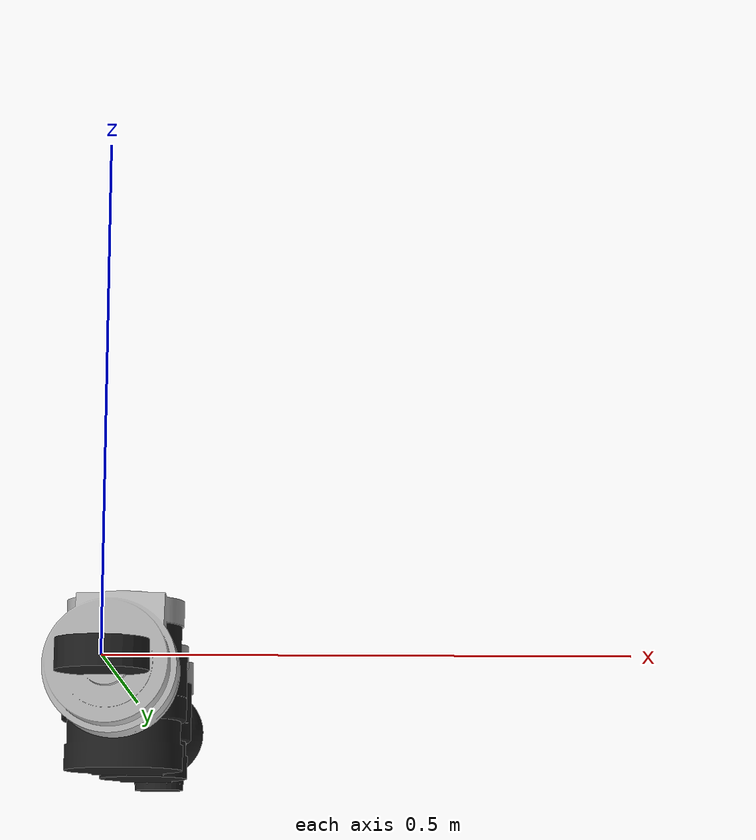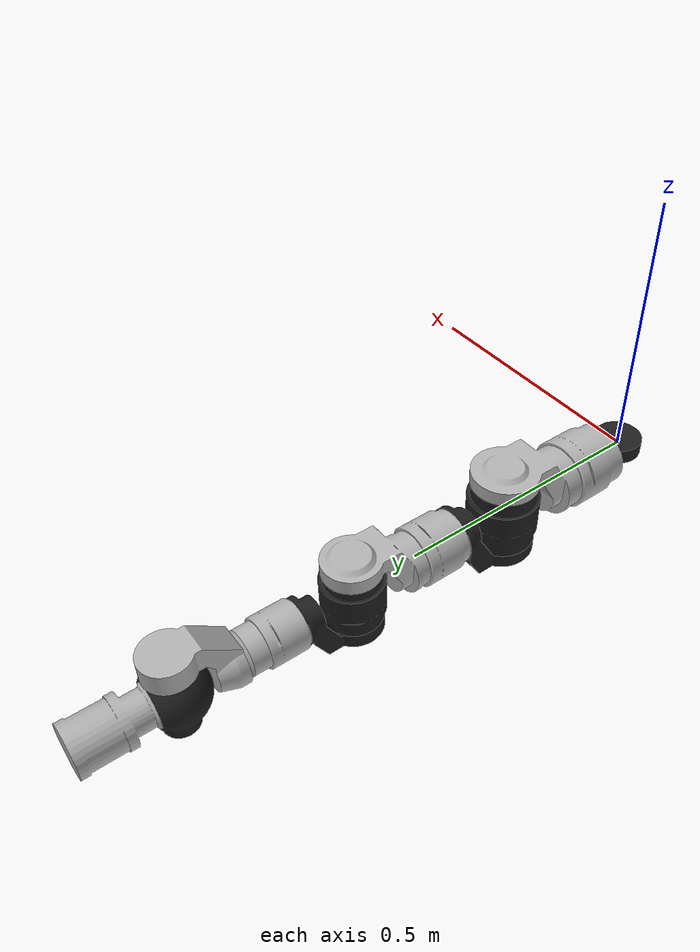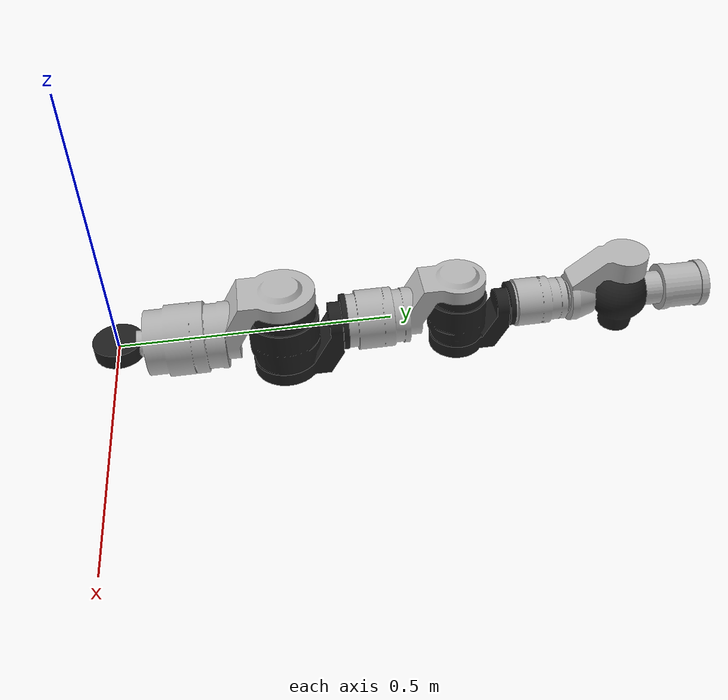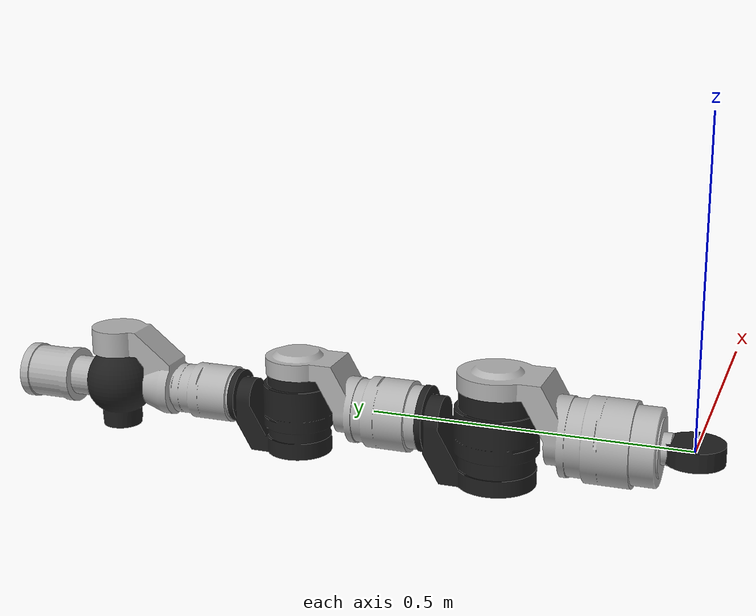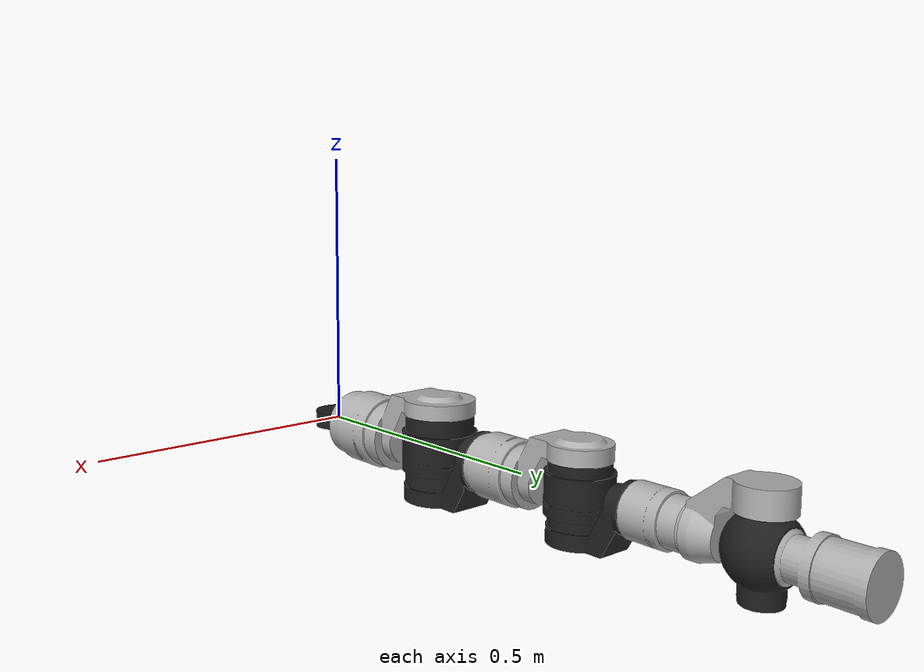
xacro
<?xml version="1.0"?>
<robot name="lwa4d" xmlns:xacro="http://www.ros.org/wiki/xacro">

    <!-- Include decriptions for SDH -->
    <xacro:include filename="$(find apc_description)/urdf/lwa4d/lwa4d.xacro" />

    <!-- Math constants -->
    <xacro:property name="M_PI" value="3.141592653" />

    <!-- LWA4D origin. -->
    <link name="lwa4d_origin" />

    <!-- Assemble LWA4D -->
    <xacro:schunk_lwa4d parent="lwa4d_origin" name="lwa4d_arm" >
        <origin xyz="0 0 0" rpy="0 0 0" />
    </xacro:schunk_lwa4d>

</robot>

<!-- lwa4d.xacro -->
<robot name="lwa4d" xmlns:xacro="http://www.ros.org/wiki/xacro">

	<!-- Differences with lwa4d-->
	<!-- Flip axis 2,4,6,7-->
	<!-- Change initial distance to joint 0 from 0.1375 to 0.12 to have -->
	<!-- pedestal distance of 0.12 + 0.18 = 0.300 -->

	<!-- To simulate with left guy, rotate w.r.t. world 180 w.r.t. Z axis -->

	<!-- F/T changes -->
	<!-- December 16th, 2014 -->
	<!-- Changed distance from J6 to Jt from 0.075 to 0.1672 (including the F/T + tool changer) -->
	<!-- Distances from Schunk datasheet -->

	<!-- xacro changes -->
	<!-- December 17th, 2014 -->
    <!-- Changed lwa4d_right_phys.urdf into a xacro macro -->

    <xacro:include filename="$(find schunk_description)/urdf/lwa4d/lwa4d.gazebo.xacro"/>
    <xacro:include filename="$(find schunk_description)/urdf/lwa4d/lwa4d.transmission.xacro"/>

	<xacro:macro name="schunk_lwa4d" params="parent name *origin">

	    <link name="${name}_0_link">
		    <inertial>
				<origin xyz="0 0 0" rpy="0 0 0"/>
				<mass value="1.0"/>
				<inertia ixx="0.01" ixy="0" ixz="0" iyy="0.01" iyz="0" izz="0.01" />
			</inertial>
            <visual>
                <origin xyz="0 0 0" rpy="0 0 0"/>
                <geometry>
                    <cylinder radius="0.045" length="0.03"/>
                </geometry>
                <material name="Schunk/Black"/>
            </visual>
            <collision>
                <origin xyz="0 0 0" rpy="0 0 0"/>
                <geometry>
                    <cylinder radius="0.045" length="0.03"/>
                </geometry>
            </collision>
		</link>

		<link name="${name}_1_link">
			<inertial>
				<origin xyz="0 0 0" rpy="0 0 0" />
				<!--mass value="5.9907"/-->
				<mass value="2.0"/>
				<inertia ixx="0.01" ixy="0" ixz="0" iyy="0.01" iyz="0" izz="0.01" />
			</inertial>

			<visual>
				<origin xyz="0 0 0" rpy="0 0 0" />
				<geometry>
					<mesh filename="package://apc_description/meshes/lwa4d/arm_1_link.dae" />
				</geometry>
				<material name="Schunk_LightGrey">
					<color rgba="0.7 0.7 0.7 1.0"/>
				</material>
			</visual>

			<collision>
				<origin xyz="0 0 0" rpy="0 0 0" />
				<geometry>
					<mesh filename="package://apc_description/meshes/lwa4d/arm_1_link.dae" />
				</geometry>
			</collision>
		</link>

		<link name="${name}_2_link">
			<inertial>
				<origin xyz="0 0 0" rpy="0 0 0"/>
				<mass value="2.0"/>
				<inertia ixx="0.03" ixy="0" ixz="0" iyy="0.03" iyz="0" izz="0.03" />
			</inertial>

			<visual>
				<origin xyz="0 0 0" rpy="0 0 0" />
				<geometry>
					<mesh filename="package://apc_description/meshes/lwa4d/arm_2_link.dae" />
				</geometry>
				<material name="Schunk_Black" />
			</visual>

			<collision>
				<origin xyz="0 0 0" rpy="0 0 0" />
				<geometry>
					<mesh filename="package://apc_description/meshes/lwa4d/arm_2_link.dae"/>
				</geometry>
			</collision>
		</link>

		<link name="${name}_3_link">
			<inertial>
				<origin xyz="0 0 0" rpy="0 0 0"/>
				<mass value="2.0"/>
				<inertia ixx="0.03" ixy="0" ixz="0" iyy="0.03" iyz="0" izz="0.03" />
			</inertial>

			<visual>
				<origin xyz="0 0 0" rpy="0 0 0" />
				<geometry>
					<mesh filename="package://apc_description/meshes/lwa4d/arm_3_link.dae" />
				</geometry>
				<material name="Schunk_LightGrey" />
			</visual>

			<collision>
				<origin xyz="0 0 0" rpy="0 0 0" />
				<geometry>
					<mesh filename="package://apc_description/meshes/lwa4d/arm_3_link.dae"/>
				</geometry>
			</collision>
		</link>

		<link name="${name}_4_link">
			<inertial>
				<origin xyz="0 0 0" rpy="0 0 0"/>
				<mass value="2.0"/>
				<inertia ixx="0.03" ixy="0" ixz="0" iyy="0.03" iyz="0" izz="0.03" />
			</inertial>

			<visual>
				<origin xyz="0 0 0" rpy="0 0 0" />
				<geometry>
					<mesh filename="package://apc_description/meshes/lwa4d/arm_4_link.dae" />
				</geometry>
				<material name="Schunk_Black" />
			</visual>

			<collision>
				<origin xyz="0 0 0" rpy="0 0 0" />
				<geometry>
					<mesh filename="package://apc_description/meshes/lwa4d/arm_4_link.dae"/>
				</geometry>
			</collision>
		</link>

		<link name="${name}_5_link">
			<inertial>
				<origin xyz="0 0 0" rpy="0 0 0"/>
				<mass value="2.313272"/>
				<inertia ixx="0.03" ixy="0" ixz="0" iyy="0.03" iyz="0" izz="0.03" />
			</inertial>

			<visual>
				<origin xyz="0 0 0" rpy="0 0 0" />
				<geometry>
					<mesh filename="package://apc_description/meshes/lwa4d/arm_5_link_phys.dae" />
				</geometry>
				<material name="Schunk_LightGrey" />
			</visual>

			<collision>
				<origin xyz="0 0 0" rpy="0 0 0" />
				<geometry>
					<mesh filename="package://apc_description/meshes/lwa4d/arm_5_link_phys.dae"/>
				</geometry>
			</collision>
		</link>

		<link name="${name}_6_link">
			<inertial>
				<origin xyz="0 0 0" rpy="0 0 0"/>
				<mass value="2.057856"/>
				<inertia ixx="0.01" ixy="0" ixz="0" iyy="0.01" iyz="0" izz="0.01" />
			</inertial>

			<visual>
				<origin xyz="0 0 0" rpy="0 0 0" />
				<geometry>
					<mesh filename="package://apc_description/meshes/lwa4d/arm_6_link.dae" />
				</geometry>
				<material name="Schunk_Black" />
			</visual>

			<collision>
				<origin xyz="0 0 0" rpy="0 0 0" />
				<geometry>
					<mesh filename="package://apc_description/meshes/lwa4d/arm_6_link.dae"/>
				</geometry>
			</collision>
		</link>

		<link name="${name}_7_link">
			<inertial>
				<origin xyz="0 0 0" rpy="0 0 0"/>
				<mass value="1.120198"/>
				<inertia ixx="0.01" ixy="0" ixz="0" iyy="0.01" iyz="0" izz="0.01" />
			</inertial>

			<visual>
				<origin xyz="0 0 0" rpy="0 0 0" />
				<geometry>
					<mesh filename="package://apc_description/meshes/lwa4d/arm_7_FT_tool_changers_link.dae" />
				</geometry>
				<material name="Schunk_LightGrey" />
			</visual>

			<collision>
				<origin xyz="0 0 0" rpy="0 0 0" />
				<geometry>
					<mesh filename="package://apc_description/meshes/lwa4d/arm_7_FT_tool_changers_link.dae"/>
				</geometry>
			</collision>
		</link>

	    <joint name="${name}_0_joint" type="fixed" >
            <xacro:insert_block name="origin"/>
		    <parent link="${parent}" />
		    <child link="${name}_0_link" />
	    </joint>

		<joint name="${name}_1_joint" type="revolute">
			<origin xyz="0 0.12 0" rpy="1.57 3.1416 0"/>
			<parent link="${name}_0_link"/>
			<child link="${name}_1_link"/>
			<axis xyz="0 0 1"/>
			<dynamics damping="10" />
			<limit effort="370" velocity="2.0" lower="-3.14" upper="3.14"/>
		</joint>

		<joint name="${name}_2_joint" type="revolute">
			<origin xyz="0 0 -0.18" rpy="-1.57 0 0"/>
			<parent link="${name}_1_link"/>
			<child link="${name}_2_link"/>
			<axis xyz="0 0 -1"/>
			<dynamics damping="10" />
			<limit effort="370" velocity="2.0" lower="-1.97" upper="1.97"/>
		</joint>

		<joint name="${name}_3_joint" type="revolute">
			<origin xyz="0 0 0" rpy="1.57 0 0"/>
			<parent link="${name}_2_link"/>
			<child link="${name}_3_link"/>
			<axis xyz="0 0 1"/>
			<dynamics damping="5" />
			<limit effort="176" velocity="2.0" lower="-3.14" upper="3.14"/>
		</joint>

		<joint name="${name}_4_joint" type="revolute">
			<origin xyz="0 0 -0.328" rpy="-1.57 0 0"/>
			<parent link="${name}_3_link"/>
			<child link="${name}_4_link"/>
			<axis xyz="0 0 -1" />
			<dynamics damping="5" />
			<limit effort="176" velocity="2.0" lower="-2.08208" upper="2.08208"/>
		</joint>

		<joint name="${name}_5_joint" type="revolute">
			<origin xyz="0 0 0" rpy="1.57 0 0" />
			<parent link="${name}_4_link"/>
			<child link="${name}_5_link"/>
			<axis xyz="0 0 1" />
			<dynamics damping="5" />
			<limit effort="41.6" velocity="2.0" lower="-3.14" upper="3.14" />
		</joint>

		<joint name="${name}_6_joint" type="revolute">
			<origin xyz="0 0 -0.323" rpy="1.57 0 0" />
			<parent link="${name}_5_link"/>
			<child link="${name}_6_link"/>
			<axis xyz="0 0 -1" />
			<dynamics damping="5" />
			<limit effort="20.1" velocity="2.0" lower="-1.8" upper="1.8" />
		</joint>

		<joint name="${name}_7_joint" type="revolute">
			<origin xyz="0 -0.1672 0" rpy="-1.57 0 0" />
			<parent link="${name}_6_link"/>
			<child link="${name}_7_link"/>
			<axis xyz="0 0 -1" />
			<dynamics damping="5" />
			<limit effort="9.6" velocity="2.0" lower="-3.14" upper="3.14" />
		</joint>

        <!-- extensions -->
        <xacro:schunk_lwa4d_gazebo name="${name}"/>
        <xacro:schunk_lwa4d_transmission name="${name}"/>

    </xacro:macro>

</robot>
